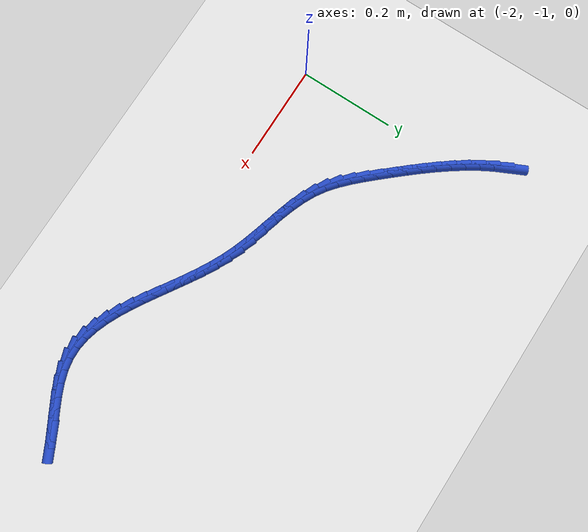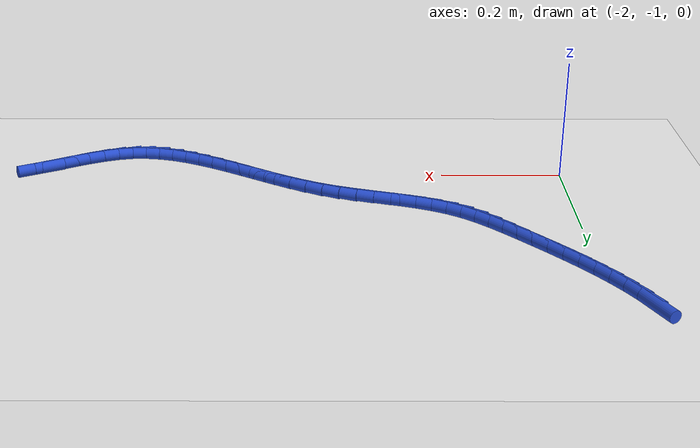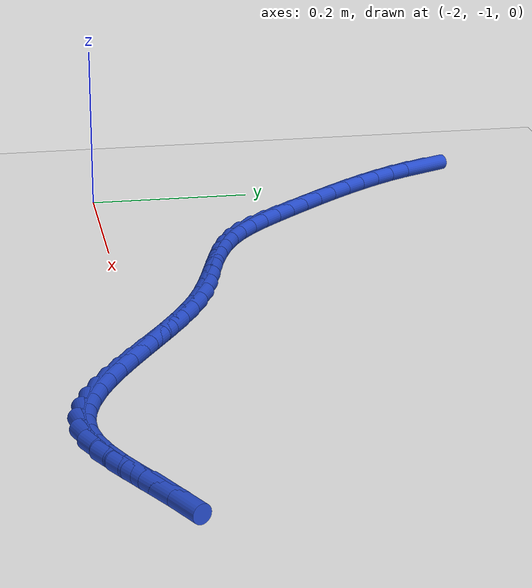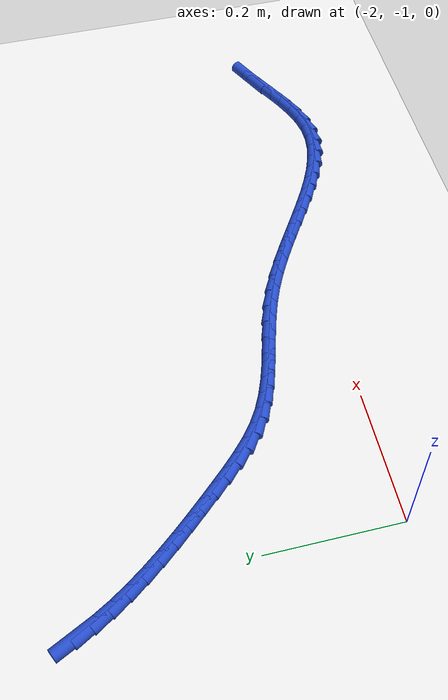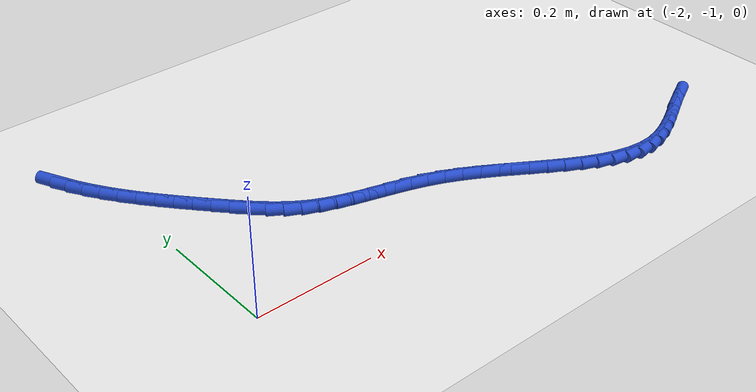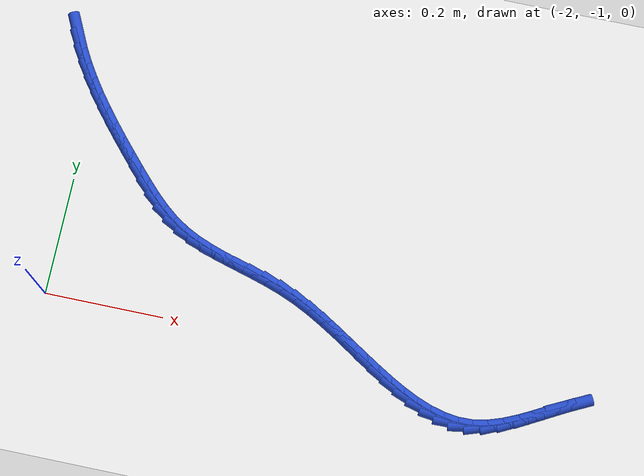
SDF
<sdf version="1.6">
 <world name="default">
  <model name="ground_plane">
   <static>1</static>
   <link name="link">
    <collision name="collision">
     <geometry><plane><normal>0 0 1</normal><size>100 100</size></plane></geometry>
     <surface><friction><ode><mu>100</mu><mu2>50</mu2></ode></friction></surface>
    </collision>
    <visual name="visual">
     <cast_shadows>0</cast_shadows>
     <geometry><plane><normal>0 0 1</normal><size>100 100</size></plane></geometry>
     <material>
      <script><uri>file://media/materials/scripts/gazebo.material</uri><name>Gazebo/WhiteGlow</name></script>
     </material>
    </visual>
   </link>
  </model>
  <model name="line">
   <link name="link_145">
    <pose>-2.0503273544195637 -0.5524274769501629 0.01 0 1.57 -1.1195235140052369</pose>
    <collision name="collision">
     <geometry><cylinder><radius>0.01</radius><length>0.08</length></cylinder></geometry>
    </collision>
    <visual name="visual">
     <material>
      <script><name>Gazebo/Blue</name><uri>file://media/materials/scripts/gazebo.material</uri></script>
     </material>
     <geometry><cylinder><radius>0.01</radius><length>0.08</length></cylinder></geometry>
    </visual>
   </link>
   <link name="link_146">
    <pose>-2.0383086894845523 -0.5772273613045155 0.01 0 1.57 -1.0553344263999256</pose>
    <collision name="collision">
     <geometry><cylinder><radius>0.01</radius><length>0.08</length></cylinder></geometry>
    </collision>
    <visual name="visual">
     <material>
      <script><name>Gazebo/Blue</name><uri>file://media/materials/scripts/gazebo.material</uri></script>
     </material>
     <geometry><cylinder><radius>0.01</radius><length>0.08</length></cylinder></geometry>
    </visual>
   </link>
   <link name="link_147">
    <pose>-2.024424230643946 -0.6017343240981197 0.01 0 1.57 -1.0013936960332026</pose>
    <collision name="collision">
     <geometry><cylinder><radius>0.01</radius><length>0.08</length></cylinder></geometry>
    </collision>
    <visual name="visual">
     <material>
      <script><name>Gazebo/Blue</name><uri>file://media/materials/scripts/gazebo.material</uri></script>
     </material>
     <geometry><cylinder><radius>0.01</radius><length>0.08</length></cylinder></geometry>
    </visual>
   </link>
   <link name="link_148">
    <pose>-2.0089441231723804 -0.6259172279388596 0.01 0 1.57 -0.9565241625328451</pose>
    <collision name="collision">
     <geometry><cylinder><radius>0.01</radius><length>0.08</length></cylinder></geometry>
    </collision>
    <visual name="visual">
     <material>
      <script><name>Gazebo/Blue</name><uri>file://media/materials/scripts/gazebo.material</uri></script>
     </material>
     <geometry><cylinder><radius>0.01</radius><length>0.08</length></cylinder></geometry>
    </visual>
   </link>
   <link name="link_149">
    <pose>-1.9921385123444928 -0.6497449354346208 0.01 0 1.57 -0.9196959987753511</pose>
    <collision name="collision">
     <geometry><cylinder><radius>0.01</radius><length>0.08</length></cylinder></geometry>
    </collision>
    <visual name="visual">
     <material>
      <script><name>Gazebo/Blue</name><uri>file://media/materials/scripts/gazebo.material</uri></script>
     </material>
     <geometry><cylinder><radius>0.01</radius><length>0.08</length></cylinder></geometry>
    </visual>
   </link>
   <link name="link_150">
    <pose>-1.974277543434919 -0.673186309193287 0.01 0 1.57 -0.890070887272246</pose>
    <collision name="collision">
     <geometry><cylinder><radius>0.01</radius><length>0.08</length></cylinder></geometry>
    </collision>
    <visual name="visual">
     <material>
      <script><name>Gazebo/Blue</name><uri>file://media/materials/scripts/gazebo.material</uri></script>
     </material>
     <geometry><cylinder><radius>0.01</radius><length>0.08</length></cylinder></geometry>
    </visual>
   </link>
   <link name="link_151">
    <pose>-1.9556313617182957 -0.6962102118227438 0.01 0 1.57 -0.8670163401597994</pose>
    <collision name="collision">
     <geometry><cylinder><radius>0.01</radius><length>0.08</length></cylinder></geometry>
    </collision>
    <visual name="visual">
     <material>
      <script><name>Gazebo/Blue</name><uri>file://media/materials/scripts/gazebo.material</uri></script>
     </material>
     <geometry><cylinder><radius>0.01</radius><length>0.08</length></cylinder></geometry>
    </visual>
   </link>
   <link name="link_152">
    <pose>-1.9364701124692587 -0.7187855059308752 0.01 0 1.57 -0.8501092576390806</pose>
    <collision name="collision">
     <geometry><cylinder><radius>0.01</radius><length>0.08</length></cylinder></geometry>
    </collision>
    <visual name="visual">
     <material>
      <script><name>Gazebo/Blue</name><uri>file://media/materials/scripts/gazebo.material</uri></script>
     </material>
     <geometry><cylinder><radius>0.01</radius><length>0.08</length></cylinder></geometry>
    </visual>
   </link>
   <link name="link_153">
    <pose>-1.9170639409624444 -0.7408810541255662 0.01 0 1.57 -0.8391404501939763</pose>
    <collision name="collision">
     <geometry><cylinder><radius>0.01</radius><length>0.08</length></cylinder></geometry>
    </collision>
    <visual name="visual">
     <material>
      <script><name>Gazebo/Blue</name><uri>file://media/materials/scripts/gazebo.material</uri></script>
     </material>
     <geometry><cylinder><radius>0.01</radius><length>0.08</length></cylinder></geometry>
    </visual>
   </link>
   <link name="link_154">
    <pose>-1.8976829873694996 -0.7624657155666195 0.01 0 1.57 -0.8290215891913835</pose>
    <collision name="collision">
     <geometry><cylinder><radius>0.01</radius><length>0.08</length></cylinder></geometry>
    </collision>
    <visual name="visual">
     <material>
      <script><name>Gazebo/Blue</name><uri>file://media/materials/scripts/gazebo.material</uri></script>
     </material>
     <geometry><cylinder><radius>0.01</radius><length>0.08</length></cylinder></geometry>
    </visual>
   </link>
   <link name="link_155">
    <pose>-1.8784758451667833 -0.7834262205031021 0.01 0 1.57 -0.8008606064895548</pose>
    <collision name="collision">
     <geometry><cylinder><radius>0.01</radius><length>0.08</length></cylinder></geometry>
    </collision>
    <visual name="visual">
     <material>
      <script><name>Gazebo/Blue</name><uri>file://media/materials/scripts/gazebo.material</uri></script>
     </material>
     <geometry><cylinder><radius>0.01</radius><length>0.08</length></cylinder></geometry>
    </visual>
   </link>
   <link name="link_156">
    <pose>-1.8591546319847068 -0.8033543731418293 0.01 0 1.57 -0.7488144654203284</pose>
    <collision name="collision">
     <geometry><cylinder><radius>0.01</radius><length>0.08</length></cylinder></geometry>
    </collision>
    <visual name="visual">
     <material>
      <script><name>Gazebo/Blue</name><uri>file://media/materials/scripts/gazebo.material</uri></script>
     </material>
     <geometry><cylinder><radius>0.01</radius><length>0.08</length></cylinder></geometry>
    </visual>
   </link>
   <link name="link_157">
    <pose>-1.839333526728062 -0.8217758006468358 0.01 0 1.57 -0.6710454895226722</pose>
    <collision name="collision">
     <geometry><cylinder><radius>0.01</radius><length>0.08</length></cylinder></geometry>
    </collision>
    <visual name="visual">
     <material>
      <script><name>Gazebo/Blue</name><uri>file://media/materials/scripts/gazebo.material</uri></script>
     </material>
     <geometry><cylinder><radius>0.01</radius><length>0.08</length></cylinder></geometry>
    </visual>
   </link>
   <link name="link_158">
    <pose>-1.8186267083016427 -0.8382161301821569 0.01 0 1.57 -0.5673088122509953</pose>
    <collision name="collision">
     <geometry><cylinder><radius>0.01</radius><length>0.08</length></cylinder></geometry>
    </collision>
    <visual name="visual">
     <material>
      <script><name>Gazebo/Blue</name><uri>file://media/materials/scripts/gazebo.material</uri></script>
     </material>
     <geometry><cylinder><radius>0.01</radius><length>0.08</length></cylinder></geometry>
    </visual>
   </link>
   <link name="link_159">
    <pose>-1.7966565189934782 -0.8522150568160117 0.01 0 1.57 -0.45983758070335606</pose>
    <collision name="collision">
     <geometry><cylinder><radius>0.01</radius><length>0.08</length></cylinder></geometry>
    </collision>
    <visual name="visual">
     <material>
      <script><name>Gazebo/Blue</name><uri>file://media/materials/scripts/gazebo.material</uri></script>
     </material>
     <geometry><cylinder><radius>0.01</radius><length>0.08</length></cylinder></geometry>
    </visual>
   </link>
   <link name="link_160">
    <pose>-1.7733140157392568 -0.863775349786614 0.01 0 1.57 -0.3763244735340453</pose>
    <collision name="collision">
     <geometry><cylinder><radius>0.01</radius><length>0.08</length></cylinder></geometry>
    </collision>
    <visual name="visual">
     <material>
      <script><name>Gazebo/Blue</name><uri>file://media/materials/scripts/gazebo.material</uri></script>
     </material>
     <geometry><cylinder><radius>0.01</radius><length>0.08</length></cylinder></geometry>
    </visual>
   </link>
   <link name="link_161">
    <pose>-1.748813536909489 -0.8734568870845559 0.01 0 1.57 -0.3189430463733954</pose>
    <collision name="collision">
     <geometry><cylinder><radius>0.01</radius><length>0.08</length></cylinder></geometry>
    </collision>
    <visual name="visual">
     <material>
      <script><name>Gazebo/Blue</name><uri>file://media/materials/scripts/gazebo.material</uri></script>
     </material>
     <geometry><cylinder><radius>0.01</radius><length>0.08</length></cylinder></geometry>
    </visual>
   </link>
   <link name="link_162">
    <pose>-1.7233886146749755 -0.8818526232491617 0.01 0 1.57 -0.28681821445814126</pose>
    <collision name="collision">
     <geometry><cylinder><radius>0.01</radius><length>0.08</length></cylinder></geometry>
    </collision>
    <visual name="visual">
     <material>
      <script><name>Gazebo/Blue</name><uri>file://media/materials/scripts/gazebo.material</uri></script>
     </material>
     <geometry><cylinder><radius>0.01</radius><length>0.08</length></cylinder></geometry>
    </visual>
   </link>
   <link name="link_163">
    <pose>-1.6972727812065151 -0.8895555128197543 0.01 0 1.57 -0.27867018930469795</pose>
    <collision name="collision">
     <geometry><cylinder><radius>0.01</radius><length>0.08</length></cylinder></geometry>
    </collision>
    <visual name="visual">
     <material>
      <script><name>Gazebo/Blue</name><uri>file://media/materials/scripts/gazebo.material</uri></script>
     </material>
     <geometry><cylinder><radius>0.01</radius><length>0.08</length></cylinder></geometry>
    </visual>
   </link>
   <link name="link_164">
    <pose>-1.670699568674908 -0.8971585103356576 0.01 0 1.57 -0.29340513979094224</pose>
    <collision name="collision">
     <geometry><cylinder><radius>0.01</radius><length>0.08</length></cylinder></geometry>
    </collision>
    <visual name="visual">
     <material>
      <script><name>Gazebo/Blue</name><uri>file://media/materials/scripts/gazebo.material</uri></script>
     </material>
     <geometry><cylinder><radius>0.01</radius><length>0.08</length></cylinder></geometry>
    </visual>
   </link>
   <link name="link_165">
    <pose>-1.643902509250954 -0.9052545703361954 0.01 0 1.57 -0.33022501467798415</pose>
    <collision name="collision">
     <geometry><cylinder><radius>0.01</radius><length>0.08</length></cylinder></geometry>
    </collision>
    <visual name="visual">
     <material>
      <script><name>Gazebo/Blue</name><uri>file://media/materials/scripts/gazebo.material</uri></script>
     </material>
     <geometry><cylinder><radius>0.01</radius><length>0.08</length></cylinder></geometry>
    </visual>
   </link>
   <link name="link_166">
    <pose>-1.6171151351054531 -0.9144366473606915 0.01 0 1.57 -0.38819842322091697</pose>
    <collision name="collision">
     <geometry><cylinder><radius>0.01</radius><length>0.08</length></cylinder></geometry>
    </collision>
    <visual name="visual">
     <material>
      <script><name>Gazebo/Blue</name><uri>file://media/materials/scripts/gazebo.material</uri></script>
     </material>
     <geometry><cylinder><radius>0.01</radius><length>0.08</length></cylinder></geometry>
    </visual>
   </link>
   <link name="link_167">
    <pose>-1.590569636167524 -0.925292442133238 0.01 0 1.57 -0.45310556534426494</pose>
    <collision name="collision">
     <geometry><cylinder><radius>0.01</radius><length>0.08</length></cylinder></geometry>
    </collision>
    <visual name="visual">
     <material>
      <script><name>Gazebo/Blue</name><uri>file://media/materials/scripts/gazebo.material</uri></script>
     </material>
     <geometry><cylinder><radius>0.01</radius><length>0.08</length></cylinder></geometry>
    </visual>
   </link>
   <link name="link_168">
    <pose>-1.5644020297697094 -0.9380332156800465 0.01 0 1.57 -0.5033910862888933</pose>
    <collision name="collision">
     <geometry><cylinder><radius>0.01</radius><length>0.08</length></cylinder></geometry>
    </collision>
    <visual name="visual">
     <material>
      <script><name>Gazebo/Blue</name><uri>file://media/materials/scripts/gazebo.material</uri></script>
     </material>
     <geometry><cylinder><radius>0.01</radius><length>0.08</length></cylinder></geometry>
    </visual>
   </link>
   <link name="link_169">
    <pose>-1.5385895022855631 -0.9522485313676531 0.01 0 1.57 -0.5382285346636634</pose>
    <collision name="collision">
     <geometry><cylinder><radius>0.01</radius><length>0.08</length></cylinder></geometry>
    </collision>
    <visual name="visual">
     <material>
      <script><name>Gazebo/Blue</name><uri>file://media/materials/scripts/gazebo.material</uri></script>
     </material>
     <geometry><cylinder><radius>0.01</radius><length>0.08</length></cylinder></geometry>
    </visual>
   </link>
   <link name="link_170">
    <pose>-1.5130943687255474 -0.9674697429308722 0.01 0 1.57 -0.5585656853618632</pose>
    <collision name="collision">
     <geometry><cylinder><radius>0.01</radius><length>0.08</length></cylinder></geometry>
    </collision>
    <visual name="visual">
     <material>
      <script><name>Gazebo/Blue</name><uri>file://media/materials/scripts/gazebo.material</uri></script>
     </material>
     <geometry><cylinder><radius>0.01</radius><length>0.08</length></cylinder></geometry>
    </visual>
   </link>
   <link name="link_171">
    <pose>-1.4878789441001248 -0.9832282041045166 0.01 0 1.57 -0.5648716298045905</pose>
    <collision name="collision">
     <geometry><cylinder><radius>0.01</radius><length>0.08</length></cylinder></geometry>
    </collision>
    <visual name="visual">
     <material>
      <script><name>Gazebo/Blue</name><uri>file://media/materials/scripts/gazebo.material</uri></script>
     </material>
     <geometry><cylinder><radius>0.01</radius><length>0.08</length></cylinder></geometry>
    </visual>
   </link>
   <link name="link_172">
    <pose>-1.462905543419759 -0.9990552686234007 0.01 0 1.57 -0.5570404529671595</pose>
    <collision name="collision">
     <geometry><cylinder><radius>0.01</radius><length>0.08</length></cylinder></geometry>
    </collision>
    <visual name="visual">
     <material>
      <script><name>Gazebo/Blue</name><uri>file://media/materials/scripts/gazebo.material</uri></script>
     </material>
     <geometry><cylinder><radius>0.01</radius><length>0.08</length></cylinder></geometry>
    </visual>
   </link>
   <link name="link_173">
    <pose>-1.438136481694913 -1.0144822902223378 0.01 0 1.57 -0.5343269530269027</pose>
    <collision name="collision">
     <geometry><cylinder><radius>0.01</radius><length>0.08</length></cylinder></geometry>
    </collision>
    <visual name="visual">
     <material>
      <script><name>Gazebo/Blue</name><uri>file://media/materials/scripts/gazebo.material</uri></script>
     </material>
     <geometry><cylinder><radius>0.01</radius><length>0.08</length></cylinder></geometry>
    </visual>
   </link>
   <link name="link_174">
    <pose>-1.413534073936049 -1.029040622636142 0.01 0 1.57 -0.49530218317147845</pose>
    <collision name="collision">
     <geometry><cylinder><radius>0.01</radius><length>0.08</length></cylinder></geometry>
    </collision>
    <visual name="visual">
     <material>
      <script><name>Gazebo/Blue</name><uri>file://media/materials/scripts/gazebo.material</uri></script>
     </material>
     <geometry><cylinder><radius>0.01</radius><length>0.08</length></cylinder></geometry>
    </visual>
   </link>
   <link name="link_175">
    <pose>-1.3890606351536308 -1.0422616195996268 0.01 0 1.57 -0.4378616720790036</pose>
    <collision name="collision">
     <geometry><cylinder><radius>0.01</radius><length>0.08</length></cylinder></geometry>
    </collision>
    <visual name="visual">
     <material>
      <script><name>Gazebo/Blue</name><uri>file://media/materials/scripts/gazebo.material</uri></script>
     </material>
     <geometry><cylinder><radius>0.01</radius><length>0.08</length></cylinder></geometry>
    </visual>
   </link>
   <link name="link_176">
    <pose>-1.364678480358122 -1.0536766348476054 0.01 0 1.57 -0.35938958929258596</pose>
    <collision name="collision">
     <geometry><cylinder><radius>0.01</radius><length>0.08</length></cylinder></geometry>
    </collision>
    <visual name="visual">
     <material>
      <script><name>Gazebo/Blue</name><uri>file://media/materials/scripts/gazebo.material</uri></script>
     </material>
     <geometry><cylinder><radius>0.01</radius><length>0.08</length></cylinder></geometry>
    </visual>
   </link>
   <link name="link_177">
    <pose>-1.340349924559984 -1.062817022114893 0.01 0 1.57 -0.2572871476441116</pose>
    <collision name="collision">
     <geometry><cylinder><radius>0.01</radius><length>0.08</length></cylinder></geometry>
    </collision>
    <visual name="visual">
     <material>
      <script><name>Gazebo/Blue</name><uri>file://media/materials/scripts/gazebo.material</uri></script>
     </material>
     <geometry><cylinder><radius>0.01</radius><length>0.08</length></cylinder></geometry>
    </visual>
   </link>
   <link name="link_178">
    <pose>-1.3160372827696805 -1.069214135136302 0.01 0 1.57 -0.1301525867346229</pose>
    <collision name="collision">
     <geometry><cylinder><radius>0.01</radius><length>0.08</length></cylinder></geometry>
    </collision>
    <visual name="visual">
     <material>
      <script><name>Gazebo/Blue</name><uri>file://media/materials/scripts/gazebo.material</uri></script>
     </material>
     <geometry><cylinder><radius>0.01</radius><length>0.08</length></cylinder></geometry>
    </visual>
   </link>
   <link name="link_179">
    <pose>-1.2917028699976745 -1.0723993276466468 0.01 0 1.57 0.020304536052665776</pose>
    <collision name="collision">
     <geometry><cylinder><radius>0.01</radius><length>0.08</length></cylinder></geometry>
    </collision>
    <visual name="visual">
     <material>
      <script><name>Gazebo/Blue</name><uri>file://media/materials/scripts/gazebo.material</uri></script>
     </material>
     <geometry><cylinder><radius>0.01</radius><length>0.08</length></cylinder></geometry>
    </visual>
   </link>
   <link name="link_180">
    <pose>-1.2673090012544292 -1.0719039533807406 0.01 0 1.57 0.18473987957690158</pose>
    <collision name="collision">
     <geometry><cylinder><radius>0.01</radius><length>0.08</length></cylinder></geometry>
    </collision>
    <visual name="visual">
     <material>
      <script><name>Gazebo/Blue</name><uri>file://media/materials/scripts/gazebo.material</uri></script>
     </material>
     <geometry><cylinder><radius>0.01</radius><length>0.08</length></cylinder></geometry>
    </visual>
   </link>
   <link name="link_181">
    <pose>-1.2428199812169867 -1.067327674930456 0.01 0 1.57 0.3235504959051616</pose>
    <collision name="collision">
     <geometry><cylinder><radius>0.01</radius><length>0.08</length></cylinder></geometry>
    </collision>
    <visual name="visual">
     <material>
      <script><name>Gazebo/Blue</name><uri>file://media/materials/scripts/gazebo.material</uri></script>
     </material>
     <geometry><cylinder><radius>0.01</radius><length>0.08</length></cylinder></geometry>
    </visual>
   </link>
   <link name="link_182">
    <pose>-1.2182236943612041 -1.0590796920854786 0.01 0 1.57 0.4183220766081157</pose>
    <collision name="collision">
     <geometry><cylinder><radius>0.01</radius><length>0.08</length></cylinder></geometry>
    </collision>
    <visual name="visual">
     <material>
      <script><name>Gazebo/Blue</name><uri>file://media/materials/scripts/gazebo.material</uri></script>
     </material>
     <geometry><cylinder><radius>0.01</radius><length>0.08</length></cylinder></geometry>
    </visual>
   </link>
   <link name="link_183">
    <pose>-1.1935234543397097 -1.0480989162171899 0.01 0 1.57 0.47535790007608475</pose>
    <collision name="collision">
     <geometry><cylinder><radius>0.01</radius><length>0.08</length></cylinder></geometry>
    </collision>
    <visual name="visual">
     <material>
      <script><name>Gazebo/Blue</name><uri>file://media/materials/scripts/gazebo.material</uri></script>
     </material>
     <geometry><cylinder><radius>0.01</radius><length>0.08</length></cylinder></geometry>
    </visual>
   </link>
   <link name="link_184">
    <pose>-1.1687228418577136 -1.0353334270957435 0.01 0 1.57 0.5000188280668768</pose>
    <collision name="collision">
     <geometry><cylinder><radius>0.01</radius><length>0.08</length></cylinder></geometry>
    </collision>
    <visual name="visual">
     <material>
      <script><name>Gazebo/Blue</name><uri>file://media/materials/scripts/gazebo.material</uri></script>
     </material>
     <geometry><cylinder><radius>0.01</radius><length>0.08</length></cylinder></geometry>
    </visual>
   </link>
   <link name="link_185">
    <pose>-1.1438254376204244 -1.0217313044912908 0.01 0 1.57 0.4950014009957684</pose>
    <collision name="collision">
     <geometry><cylinder><radius>0.01</radius><length>0.08</length></cylinder></geometry>
    </collision>
    <visual name="visual">
     <material>
      <script><name>Gazebo/Blue</name><uri>file://media/materials/scripts/gazebo.material</uri></script>
     </material>
     <geometry><cylinder><radius>0.01</radius><length>0.08</length></cylinder></geometry>
    </visual>
   </link>
   <link name="link_186">
    <pose>-1.1188348223330515 -1.0082406281739844 0.01 0 1.57 0.46133574214521533</pose>
    <collision name="collision">
     <geometry><cylinder><radius>0.01</radius><length>0.08</length></cylinder></geometry>
    </collision>
    <visual name="visual">
     <material>
      <script><name>Gazebo/Blue</name><uri>file://media/materials/scripts/gazebo.material</uri></script>
     </material>
     <geometry><cylinder><radius>0.01</radius><length>0.08</length></cylinder></geometry>
    </visual>
   </link>
  </model>
 </world>
</sdf>
